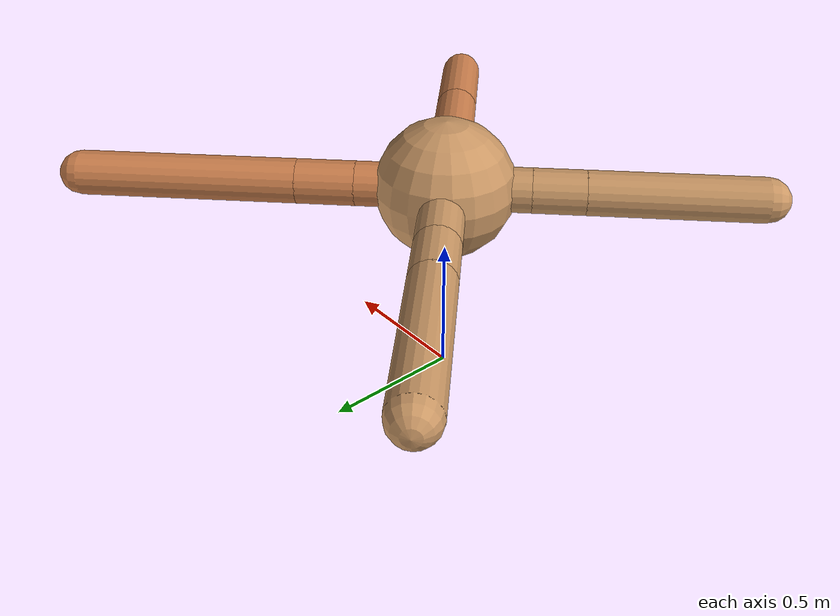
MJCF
<mujoco model="ant">
  <compiler angle="degree" coordinate="local" inertiafromgeom="true" />
  <option integrator="RK4" timestep="0.01" />
  <custom>
    <numeric data="0.0 0.0 0.55 1.0 0.0 0.0 0.0 0.0 1.0 0.0 -1.0 0.0 -1.0 0.0 1.0" name="init_qpos" />
  </custom>
  <default>
    <joint armature="1" damping="1" limited="true" />
    <geom conaffinity="0" condim="3" density="5.0" friction="1.5 0.1 0.1" margin="0.01" rgba="0.8 0.6 0.4 1" />
  </default>
  <worldbody>
    <body name="torso" pos="0 0 0.75">
      <geom name="torso_geom" pos="0 0 0" size="0.25" type="sphere" />

      <body name="front_left_leg" pos="0 0 0">
        <geom fromto="0.0 0.0 0.0 0.22413009408184417 0.22413009408184417 0.0" name="aux_1_geom" size="0.08" type="capsule" rgba=".8 .5 .3 1" />
        <body name="aux_1" pos="0.22413009408184417 0.22413009408184417 0.0">
          <joint axis="0 0 1" name="hip_1" pos="0.0 0.0 0.0" range="-40 40" type="hinge" />
          <geom fromto="0.0 0.0 0.0 0.14869285100667992 0.14869285100667992 0.0" name="left_leg_geom" size="0.08" type="capsule" rgba=".8 .5 .3 1" />
          <body pos="0.14869285100667992 0.14869285100667992 0.0" name="front_left_foot">
            <joint axis="-1 1 0" name="ankle_1" pos="0.0 0.0 0.0" range="30 100" type="hinge" />
            <geom fromto="0.0 0.0 0.0 0.5555855457921913 0.5555855457921913 0.0" name="left_ankle_geom" size="0.08" type="capsule" rgba=".8 .5 .3 1" />
          </body>
        </body>
      </body>
      <body name="front_right_leg" pos="0 0 0">
        <geom fromto="0.0 0.0 0.0 -0.28652548473066625 0.28652548473066625 0.0" name="aux_2_geom" size="0.08" type="capsule" />
        <body name="aux_2" pos="-0.28652548473066625 0.28652548473066625 0.0">
          <joint axis="0 0 1" name="hip_2" pos="0.0 0.0 0.0" range="-40 40" type="hinge" />
          <geom fromto="0.0 0.0 0.0 -0.1446088931743026 0.1446088931743026 0.0" name="right_leg_geom" size="0.08" type="capsule" />
          <body pos="-0.1446088931743026 0.1446088931743026 0.0" name="front_right_foot">
            <joint axis="1 1 0" name="ankle_2" pos="0.0 0.0 0.0" range="-100 -30" type="hinge" />
            <geom fromto="0.0 0.0 0.0 -0.4291813358053402 0.4291813358053402 0.0" name="right_ankle_geom" size="0.08" type="capsule" />
          </body>
        </body>
      </body>
      <body name="left_back_leg" pos="0 0 0">
        <geom fromto="0.0 0.0 0.0 -0.21320214841698615 -0.21320214841698615 0.0" name="aux_3_geom" size="0.08" type="capsule" />
        <body name="aux_3" pos="-0.21320214841698615 -0.21320214841698615 0.0">
          <joint axis="0 0 1" name="hip_3" pos="0.0 0.0 0.0" range="-40 40" type="hinge" />
          <geom fromto="0.0 0.0 0.0 -0.13286604964250956 -0.13286604964250956 0.0" name="back_leg_geom" size="0.08" type="capsule" />
          <body pos="-0.13286604964250956 -0.13286604964250956 0.0" name="left_back_foot">
            <joint axis="-1 1 0" name="ankle_3" pos="0.0 0.0 0.0" range="-100 -30" type="hinge" />
            <geom fromto="0.0 0.0 0.0 -0.4359293483265999 -0.4359293483265999 0.0" name="third_ankle_geom" size="0.08" type="capsule" />
          </body>
        </body>
      </body>
      <body name="right_back_leg" pos="0 0 0">
        <geom fromto="0.0 0.0 0.0 0.2321586248561358 -0.2321586248561358 0.0" name="aux_4_geom" size="0.08" type="capsule" rgba=".8 .5 .3 1" />
        <body name="aux_4" pos="0.2321586248561358 -0.2321586248561358 0.0">
          <joint axis="0 0 1" name="hip_4" pos="0.0 0.0 0.0" range="-40 40" type="hinge" />
          <geom fromto="0.0 0.0 0.0 0.27632675984391275 -0.27632675984391275 0.0" name="rightback_leg_geom" size="0.08" type="capsule" rgba=".8 .5 .3 1" />
          <body pos="0.27632675984391275 -0.27632675984391275 0.0" name="right_back_foot">
            <joint axis="1 1 0" name="ankle_4" pos="0.0 0.0 0.0" range="30 100" type="hinge" />
            <geom fromto="0.0 0.0 0.0 0.28517075247220075 -0.28517075247220075 0.0" name="fourth_ankle_geom" size="0.08" type="capsule" rgba=".8 .5 .3 1" />
          </body>
        </body>
      </body>
    </body>
  </worldbody>
  <actuator>
    <motor ctrllimited="true" ctrlrange="-1.0 1.0" joint="hip_4" gear="150" />
    <motor ctrllimited="true" ctrlrange="-1.0 1.0" joint="ankle_4" gear="150" />
    <motor ctrllimited="true" ctrlrange="-1.0 1.0" joint="hip_1" gear="150" />
    <motor ctrllimited="true" ctrlrange="-1.0 1.0" joint="ankle_1" gear="150" />
    <motor ctrllimited="true" ctrlrange="-1.0 1.0" joint="hip_2" gear="150" />
    <motor ctrllimited="true" ctrlrange="-1.0 1.0" joint="ankle_2" gear="150" />
    <motor ctrllimited="true" ctrlrange="-1.0 1.0" joint="hip_3" gear="150" />
    <motor ctrllimited="true" ctrlrange="-1.0 1.0" joint="ankle_3" gear="150" />
  </actuator>
</mujoco>
